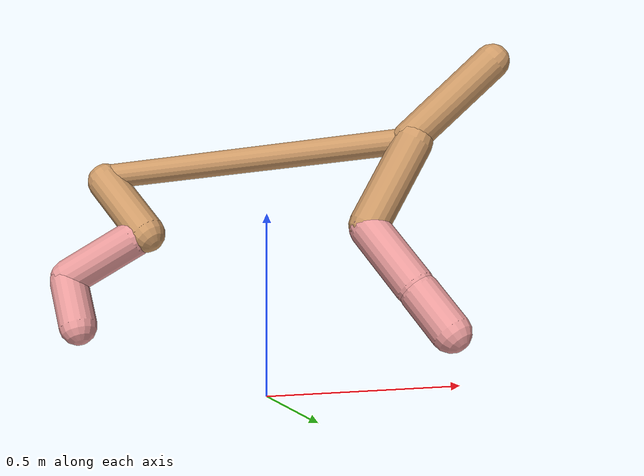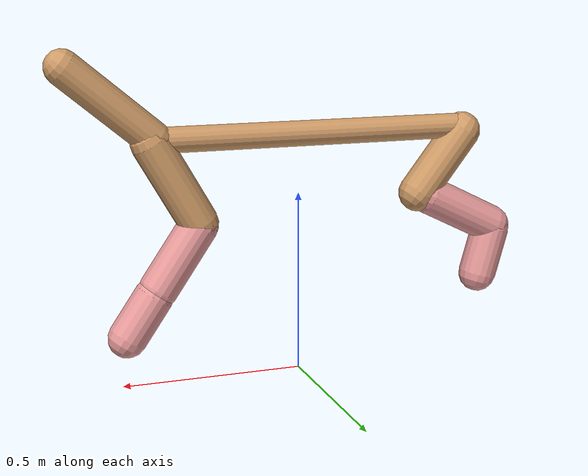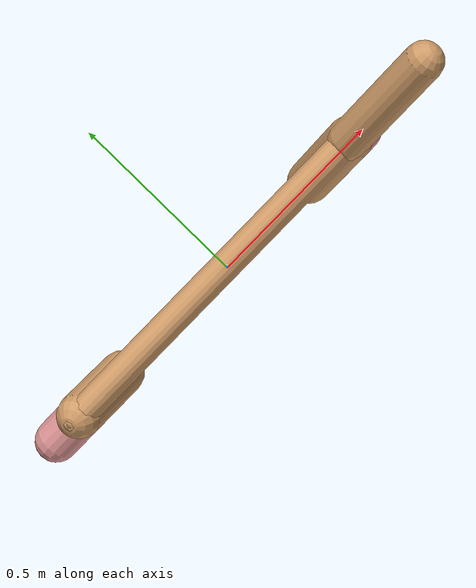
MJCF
<mujoco model="cheetah">
  <compiler angle="radian" coordinate="local" inertiafromgeom="true" settotalmass="14" />
  <default>
    <joint armature=".1" damping=".01" limited="true" solimplimit="0 .8 .03" solreflimit=".02 1" stiffness="8" />
    <geom conaffinity="0" condim="3" contype="1" friction="0.8 .1 .1" rgba="0.8 0.6 .4 1" solimp="0.0 0.8 0.01" solref="0.02 1" />
    <motor ctrllimited="true" ctrlrange="-1 1" />
  </default>
  <size nstack="300000" nuser_geom="1" />
  <option gravity="0 0 -9.81" timestep="0.01" />
  <worldbody>
    <body name="torso" pos="0.0 0.0 0.6645885696932988">
      <joint armature="0" axis="1 0 0" damping="0" limited="false" name="ignorex" pos="0 0 0" stiffness="0" type="slide" />
      <joint armature="0" axis="0 0 1" damping="0" limited="false" name="ignorez" pos="0 0 0" stiffness="0" type="slide" />
      <joint armature="0" axis="0 1 0" damping="0" limited="false" name="ignorey" pos="0 0 0" stiffness="0" type="hinge" />
      <geom fromto="-0.5 0.0 0.0 0.41267165673974754 0.0 0.0" name="torso" size="0.035116112090265536" type="capsule" />
      <geom axisangle="0 1 0 .87" name="head" pos="0.5126716567397475 0.0 0.1" size="0.04755637648643872 0.15" type="capsule" />

      <body name="bthigh" pos="-.5 0 0">
        <joint axis="0 1 0" damping="6" name="bthigh" pos="0 0 0" range="-.52 1.05" stiffness="240" type="hinge" />
        <geom axisangle="0 1 0 -3.8" name="bthigh" pos="0.07737904416261526 0.0 -0.10059275741139984" size="0.05370325529143969 0.1078988738760979" type="capsule" />
        <body name="bshin" pos="0.11475808832523052 0.0 -0.19118551482279966">
          <joint axis="0 1 0" damping="4.5" name="bshin" pos="0 0 0" range="-.785 .785" stiffness="180" type="hinge" />
          <geom axisangle="0 1 0 -2.03" name="bshin" pos="-0.10567145928765309 0.0 -0.052835729643826546" rgba="0.9 0.6 0.6 1" size="0.05370325529143969 0.11161952469941162" type="capsule" />
          <body name="bfoot" pos="-0.21134291857530618 0.0 -0.10567145928765309">
            <joint axis="0 1 0" damping="3" name="bfoot" pos="0 0 0" range="-.4 .785" stiffness="120" type="hinge" />
            <geom axisangle="0 1 0 -.27" name="bfoot" pos="0.02289343180098588 0.0 -0.07402209615652101" rgba="0.9 0.6 0.6 1" size="0.05370325529143969 0.06994823547829795" type="capsule" />
            <inertial mass="10" />
          </body>
        </body>
      </body>
      <body name="fthigh" pos="0.4126716567397475 0.0 0.0">
        <joint axis="0 1 0" damping="4.5" name="fthigh" pos="0 0 0" range="-1.5 0.8" stiffness="180" type="hinge" />
        <geom axisangle="0 1 0 .52" name="fthigh" pos="-0.06751768664997874 0.0 -0.11574460568567783" size="0.05351837813383199 0.12807351440293804" type="capsule" />
        <body name="fshin" pos="-0.1350353732999575 0.0 -0.23148921137135567">
          <joint axis="0 1 0" damping="3" name="fshin" pos="0 0 0" range="-1.2 1.1" stiffness="120" type="hinge" />
          <geom axisangle="0 1 0 -.6" name="fshin" pos="0.06270114629505724 0.0 -0.08681697179315617" rgba="0.9 0.6 0.6 1" size="0.05351837813383199 0.10207362802038669" type="capsule" />
          <body name="ffoot" pos="0.12540229259011448 0.0 -0.17363394358631234">
            <joint axis="0 1 0" damping="1.5" name="ffoot" pos="0 0 0" range="-3.1 -0.3" stiffness="60" type="hinge" />
            <geom axisangle="0 1 0 -.6" name="ffoot" pos="0.04359787658678533 0.0 -0.0678189191349994" rgba="0.9 0.6 0.6 1" size="0.05351837813383199 0.0674071128436516" type="capsule" />
            <inertial mass="10" />
          </body>
        </body>
      </body>
    </body>
  </worldbody>
  <actuator>
    <motor gear="120" joint="bthigh" name="bthigh" />
    <motor gear="90" joint="bshin" name="bshin" />
    <motor gear="60" joint="bfoot" name="bfoot" />
    <motor gear="120" joint="fthigh" name="fthigh" />
    <motor gear="60" joint="fshin" name="fshin" />
    <motor gear="30" joint="ffoot" name="ffoot" />
  </actuator>
</mujoco>
